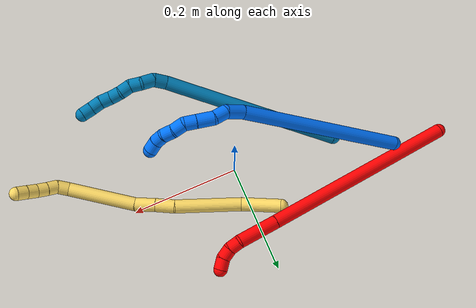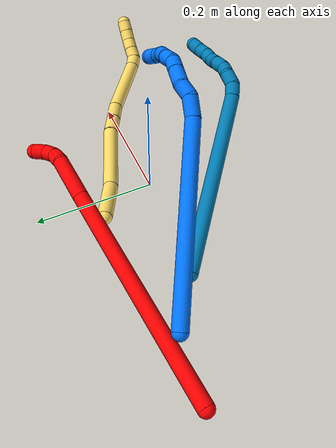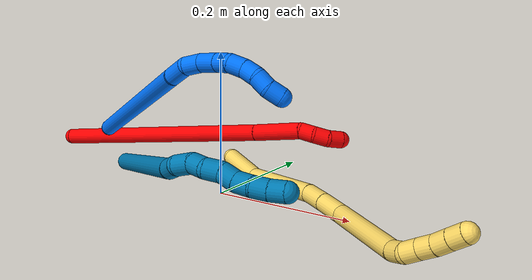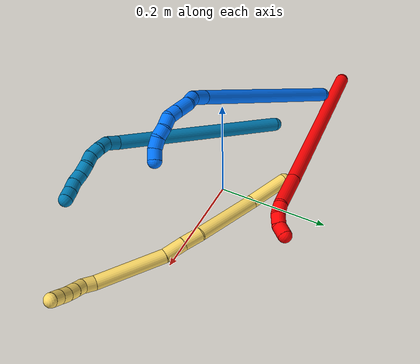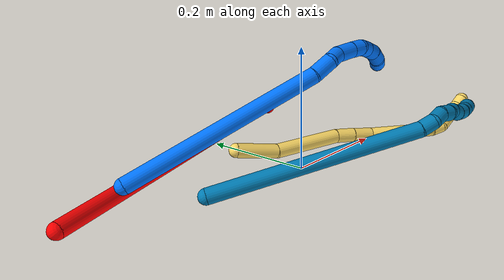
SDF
<sdf version="1.7">
 <world name="default">
  <model name="2">
   <static>0</static>
   <link name="2">
    <collision name="collision-cylinder-e_1_1_4">
     <pose>0.142845 0.104999 0.035398 -1.24563 0.911049 -0.676593</pose>
     <geometry><cylinder><radius>0.0125</radius><length>0.361566</length></cylinder></geometry>
     <surface>
      <friction><ode><mu>1.16</mu><mu2>1.16</mu2><slip1>0</slip1><slip2>0</slip2></ode></friction>
      <contact><ode><kp>1e+06</kp><kd>1</kd><max_vel>0</max_vel><min_depth>0.001</min_depth></ode></contact>
     </surface>
    </collision>
    <visual name="visual-cylinder-e_1_1_4">
     <pose>0.142845 0.104999 0.035398 -1.24563 0.911049 -0.676593</pose>
     <geometry><cylinder><radius>0.0125</radius><length>0.361566</length></cylinder></geometry>
     <material><ambient>1 0 0 1</ambient></material>
    </visual>
    <collision name="collision-cylinder-e_2_4_5">
     <pose>0.315069 0.232232 0.078776 -1.22625 0.893564 -0.650235</pose>
     <geometry><cylinder><radius>0.0125</radius><length>0.075396</length></cylinder></geometry>
     <surface>
      <friction><ode><mu>1.16</mu><mu2>1.16</mu2><slip1>0</slip1><slip2>0</slip2></ode></friction>
      <contact><ode><kp>1e+06</kp><kd>1</kd><max_vel>0</max_vel><min_depth>0.001</min_depth></ode></contact>
     </surface>
    </collision>
    <visual name="visual-cylinder-e_2_4_5">
     <pose>0.315069 0.232232 0.078776 -1.22625 0.893564 -0.650235</pose>
     <geometry><cylinder><radius>0.0125</radius><length>0.075396</length></cylinder></geometry>
     <material><ambient>1 0 0 1</ambient></material>
    </visual>
    <collision name="collision-cylinder-e_3_5_6">
     <pose>0.353996 0.258674 0.08609 -1.72761 1.15119 -1.29916</pose>
     <geometry><cylinder><radius>0.0125</radius><length>0.020911</length></cylinder></geometry>
     <surface>
      <friction><ode><mu>1.16</mu><mu2>1.16</mu2><slip1>0</slip1><slip2>0</slip2></ode></friction>
      <contact><ode><kp>1e+06</kp><kd>1</kd><max_vel>0</max_vel><min_depth>0.001</min_depth></ode></contact>
     </surface>
    </collision>
    <visual name="visual-cylinder-e_3_5_6">
     <pose>0.353996 0.258674 0.08609 -1.72761 1.15119 -1.29916</pose>
     <geometry><cylinder><radius>0.0125</radius><length>0.020911</length></cylinder></geometry>
     <material><ambient>1 0 0 1</ambient></material>
    </visual>
    <collision name="collision-cylinder-e_4_6_7">
     <pose>0.372007 0.267823 0.081755 -2.20955 0.9419 -1.58303</pose>
     <geometry><cylinder><radius>0.0125</radius><length>0.020928</length></cylinder></geometry>
     <surface>
      <friction><ode><mu>1.16</mu><mu2>1.16</mu2><slip1>0</slip1><slip2>0</slip2></ode></friction>
      <contact><ode><kp>1e+06</kp><kd>1</kd><max_vel>0</max_vel><min_depth>0.001</min_depth></ode></contact>
     </surface>
    </collision>
    <visual name="visual-cylinder-e_4_6_7">
     <pose>0.372007 0.267823 0.081755 -2.20955 0.9419 -1.58303</pose>
     <geometry><cylinder><radius>0.0125</radius><length>0.020928</length></cylinder></geometry>
     <material><ambient>1 0 0 1</ambient></material>
    </visual>
    <collision name="collision-cylinder-e_5_7_2">
     <pose>0.386103 0.27935 0.071982 -2.31824 0.560413 -1.16548</pose>
     <geometry><cylinder><radius>0.0125</radius><length>0.021198</length></cylinder></geometry>
     <surface>
      <friction><ode><mu>1.16</mu><mu2>1.16</mu2><slip1>0</slip1><slip2>0</slip2></ode></friction>
      <contact><ode><kp>1e+06</kp><kd>1</kd><max_vel>0</max_vel><min_depth>0.001</min_depth></ode></contact>
     </surface>
    </collision>
    <visual name="visual-cylinder-e_5_7_2">
     <pose>0.386103 0.27935 0.071982 -2.31824 0.560413 -1.16548</pose>
     <geometry><cylinder><radius>0.0125</radius><length>0.021198</length></cylinder></geometry>
     <material><ambient>1 0 0 1</ambient></material>
    </visual>
    <collision name="collision-sphere-2">
     <pose>0.391736 0.285934 0.065879 0 -0 0</pose>
     <geometry><sphere><radius>0.0125</radius></sphere></geometry>
     <surface>
      <friction><ode><mu>1.16</mu><mu2>1.16</mu2><slip1>0</slip1><slip2>0</slip2></ode></friction>
      <contact><ode><kp>1e+06</kp><kd>1</kd><max_vel>0</max_vel><min_depth>0.001</min_depth></ode></contact>
     </surface>
    </collision>
    <visual name="visual-sphere-2">
     <pose>0.391736 0.285934 0.065879 0 -0 0</pose>
     <geometry><sphere><radius>0.0125</radius></sphere></geometry>
     <material><ambient>1 0 0 1</ambient></material>
    </visual>
    <collision name="collision-sphere-7">
     <pose>0.380469 0.272765 0.078085 0 -0 0</pose>
     <geometry><sphere><radius>0.0125</radius></sphere></geometry>
     <surface>
      <friction><ode><mu>1.16</mu><mu2>1.16</mu2><slip1>0</slip1><slip2>0</slip2></ode></friction>
      <contact><ode><kp>1e+06</kp><kd>1</kd><max_vel>0</max_vel><min_depth>0.001</min_depth></ode></contact>
     </surface>
    </collision>
    <visual name="visual-sphere-7">
     <pose>0.380469 0.272765 0.078085 0 -0 0</pose>
     <geometry><sphere><radius>0.0125</radius></sphere></geometry>
     <material><ambient>1 0 0 1</ambient></material>
    </visual>
    <collision name="collision-sphere-6">
     <pose>0.363544 0.262881 0.085425 0 -0 0</pose>
     <geometry><sphere><radius>0.0125</radius></sphere></geometry>
     <surface>
      <friction><ode><mu>1.16</mu><mu2>1.16</mu2><slip1>0</slip1><slip2>0</slip2></ode></friction>
      <contact><ode><kp>1e+06</kp><kd>1</kd><max_vel>0</max_vel><min_depth>0.001</min_depth></ode></contact>
     </surface>
    </collision>
    <visual name="visual-sphere-6">
     <pose>0.363544 0.262881 0.085425 0 -0 0</pose>
     <geometry><sphere><radius>0.0125</radius></sphere></geometry>
     <material><ambient>1 0 0 1</ambient></material>
    </visual>
    <collision name="collision-sphere-5">
     <pose>0.344447 0.254466 0.086755 0 -0 0</pose>
     <geometry><sphere><radius>0.0125</radius></sphere></geometry>
     <surface>
      <friction><ode><mu>1.16</mu><mu2>1.16</mu2><slip1>0</slip1><slip2>0</slip2></ode></friction>
      <contact><ode><kp>1e+06</kp><kd>1</kd><max_vel>0</max_vel><min_depth>0.001</min_depth></ode></contact>
     </surface>
    </collision>
    <visual name="visual-sphere-5">
     <pose>0.344447 0.254466 0.086755 0 -0 0</pose>
     <geometry><sphere><radius>0.0125</radius></sphere></geometry>
     <material><ambient>1 0 0 1</ambient></material>
    </visual>
    <collision name="collision-sphere-1">
     <geometry><sphere><radius>0.0125</radius></sphere></geometry>
     <surface>
      <friction><ode><mu>1.16</mu><mu2>1.16</mu2><slip1>0</slip1><slip2>0</slip2></ode></friction>
      <contact><ode><kp>1e+06</kp><kd>1</kd><max_vel>0</max_vel><min_depth>0.001</min_depth></ode></contact>
     </surface>
    </collision>
    <visual name="visual-sphere-1">
     <geometry><sphere><radius>0.0125</radius></sphere></geometry>
     <material><ambient>1 0 0 1</ambient></material>
    </visual>
    <collision name="collision-sphere-4">
     <pose>0.28569 0.209997 0.070797 0 -0 0</pose>
     <geometry><sphere><radius>0.0125</radius></sphere></geometry>
     <surface>
      <friction><ode><mu>1.16</mu><mu2>1.16</mu2><slip1>0</slip1><slip2>0</slip2></ode></friction>
      <contact><ode><kp>1e+06</kp><kd>1</kd><max_vel>0</max_vel><min_depth>0.001</min_depth></ode></contact>
     </surface>
    </collision>
    <visual name="visual-sphere-4">
     <pose>0.28569 0.209997 0.070797 0 -0 0</pose>
     <geometry><sphere><radius>0.0125</radius></sphere></geometry>
     <material><ambient>1 0 0 1</ambient></material>
    </visual>
    <inertial>
     <pose>0.197551 0.144819 0.047551 0 -0 0</pose>
     <mass>0.5</mass>
     <inertia>
      <ixx>0.000405</ixx>
      <ixy>0</ixy>
      <ixz>0</ixz>
      <iyy>0.001356</iyy>
      <iyz>0</iyz>
      <izz>-0.005473</izz>
     </inertia>
    </inertial>
   </link>
   <pose>-0.3805 0.085864 0.011494 0.872684 0.487801 -0.111903</pose>
  </model>
  <model name="5">
   <static>0</static>
   <link name="5">
    <collision name="collision-cylinder-e_1_1_4">
     <pose>0.021154 0.000969 0.030359 -0.031908 0.608337 -0.010017</pose>
     <geometry><cylinder><radius>0.0125</radius><length>0.074031</length></cylinder></geometry>
     <surface>
      <friction><ode><mu>1.16</mu><mu2>1.16</mu2><slip1>0</slip1><slip2>0</slip2></ode></friction>
      <contact><ode><kp>1e+06</kp><kd>1</kd><max_vel>0</max_vel><min_depth>0.001</min_depth></ode></contact>
     </surface>
    </collision>
    <visual name="visual-cylinder-e_1_1_4">
     <pose>0.021154 0.000969 0.030359 -0.031908 0.608337 -0.010017</pose>
     <geometry><cylinder><radius>0.0125</radius><length>0.074031</length></cylinder></geometry>
     <material><ambient>1 0.858824 0.4 1</ambient></material>
    </visual>
    <collision name="collision-cylinder-e_2_4_5">
     <pose>0.06402 0.004048 0.118164 -0.036712 0.361122 -0.006702</pose>
     <geometry><cylinder><radius>0.0125</radius><length>0.122895</length></cylinder></geometry>
     <surface>
      <friction><ode><mu>1.16</mu><mu2>1.16</mu2><slip1>0</slip1><slip2>0</slip2></ode></friction>
      <contact><ode><kp>1e+06</kp><kd>1</kd><max_vel>0</max_vel><min_depth>0.001</min_depth></ode></contact>
     </surface>
    </collision>
    <visual name="visual-cylinder-e_2_4_5">
     <pose>0.06402 0.004048 0.118164 -0.036712 0.361122 -0.006702</pose>
     <geometry><cylinder><radius>0.0125</radius><length>0.122895</length></cylinder></geometry>
     <material><ambient>1 0.858824 0.4 1</ambient></material>
    </visual>
    <collision name="collision-cylinder-e_3_5_6">
     <pose>0.094688 0.005624 0.190845 0.035008 0.531205 0.009524</pose>
     <geometry><cylinder><radius>0.0125</radius><length>0.035364</length></cylinder></geometry>
     <surface>
      <friction><ode><mu>1.16</mu><mu2>1.16</mu2><slip1>0</slip1><slip2>0</slip2></ode></friction>
      <contact><ode><kp>1e+06</kp><kd>1</kd><max_vel>0</max_vel><min_depth>0.001</min_depth></ode></contact>
     </surface>
    </collision>
    <visual name="visual-cylinder-e_3_5_6">
     <pose>0.094688 0.005624 0.190845 0.035008 0.531205 0.009524</pose>
     <geometry><cylinder><radius>0.0125</radius><length>0.035364</length></cylinder></geometry>
     <material><ambient>1 0.858824 0.4 1</ambient></material>
    </visual>
    <collision name="collision-cylinder-e_4_6_7">
     <pose>0.113898 0.005466 0.222348 -0.023069 0.562278 -0.006662</pose>
     <geometry><cylinder><radius>0.0125</radius><length>0.038464</length></cylinder></geometry>
     <surface>
      <friction><ode><mu>1.16</mu><mu2>1.16</mu2><slip1>0</slip1><slip2>0</slip2></ode></friction>
      <contact><ode><kp>1e+06</kp><kd>1</kd><max_vel>0</max_vel><min_depth>0.001</min_depth></ode></contact>
     </surface>
    </collision>
    <visual name="visual-cylinder-e_4_6_7">
     <pose>0.113898 0.005466 0.222348 -0.023069 0.562278 -0.006662</pose>
     <geometry><cylinder><radius>0.0125</radius><length>0.038464</length></cylinder></geometry>
     <material><ambient>1 0.858824 0.4 1</ambient></material>
    </visual>
    <collision name="collision-cylinder-e_5_7_8">
     <pose>0.156095 -0.005595 0.292158 0.210431 0.528155 0.057094</pose>
     <geometry><cylinder><radius>0.0125</radius><length>0.126777</length></cylinder></geometry>
     <surface>
      <friction><ode><mu>1.16</mu><mu2>1.16</mu2><slip1>0</slip1><slip2>0</slip2></ode></friction>
      <contact><ode><kp>1e+06</kp><kd>1</kd><max_vel>0</max_vel><min_depth>0.001</min_depth></ode></contact>
     </surface>
    </collision>
    <visual name="visual-cylinder-e_5_7_8">
     <pose>0.156095 -0.005595 0.292158 0.210431 0.528155 0.057094</pose>
     <geometry><cylinder><radius>0.0125</radius><length>0.126777</length></cylinder></geometry>
     <material><ambient>1 0.858824 0.4 1</ambient></material>
    </visual>
    <collision name="collision-cylinder-e_6_8_9">
     <pose>0.19093 -0.0196 0.35614 0.241231 0.262775 0.032031</pose>
     <geometry><cylinder><radius>0.0125</radius><length>0.022265</length></cylinder></geometry>
     <surface>
      <friction><ode><mu>1.16</mu><mu2>1.16</mu2><slip1>0</slip1><slip2>0</slip2></ode></friction>
      <contact><ode><kp>1e+06</kp><kd>1</kd><max_vel>0</max_vel><min_depth>0.001</min_depth></ode></contact>
     </surface>
    </collision>
    <visual name="visual-cylinder-e_6_8_9">
     <pose>0.19093 -0.0196 0.35614 0.241231 0.262775 0.032031</pose>
     <geometry><cylinder><radius>0.0125</radius><length>0.022265</length></cylinder></geometry>
     <material><ambient>1 0.858824 0.4 1</ambient></material>
    </visual>
    <collision name="collision-cylinder-e_7_9_10">
     <pose>0.192396 -0.021358 0.376547 -0.081142 -0.141667 0.00576</pose>
     <geometry><cylinder><radius>0.0125</radius><length>0.020203</length></cylinder></geometry>
     <surface>
      <friction><ode><mu>1.16</mu><mu2>1.16</mu2><slip1>0</slip1><slip2>0</slip2></ode></friction>
      <contact><ode><kp>1e+06</kp><kd>1</kd><max_vel>0</max_vel><min_depth>0.001</min_depth></ode></contact>
     </surface>
    </collision>
    <visual name="visual-cylinder-e_7_9_10">
     <pose>0.192396 -0.021358 0.376547 -0.081142 -0.141667 0.00576</pose>
     <geometry><cylinder><radius>0.0125</radius><length>0.020203</length></cylinder></geometry>
     <material><ambient>1 0.858824 0.4 1</ambient></material>
    </visual>
    <collision name="collision-cylinder-e_8_10_11">
     <pose>0.189834 -0.020005 0.396435 -0.054563 -0.113804 0.003109</pose>
     <geometry><cylinder><radius>0.0125</radius><length>0.020001</length></cylinder></geometry>
     <surface>
      <friction><ode><mu>1.16</mu><mu2>1.16</mu2><slip1>0</slip1><slip2>0</slip2></ode></friction>
      <contact><ode><kp>1e+06</kp><kd>1</kd><max_vel>0</max_vel><min_depth>0.001</min_depth></ode></contact>
     </surface>
    </collision>
    <visual name="visual-cylinder-e_8_10_11">
     <pose>0.189834 -0.020005 0.396435 -0.054563 -0.113804 0.003109</pose>
     <geometry><cylinder><radius>0.0125</radius><length>0.020001</length></cylinder></geometry>
     <material><ambient>1 0.858824 0.4 1</ambient></material>
    </visual>
    <collision name="collision-cylinder-e_9_11_12">
     <pose>0.186702 -0.019669 0.416153 0.020998 -0.201005 -0.002118</pose>
     <geometry><cylinder><radius>0.0125</radius><length>0.02</length></cylinder></geometry>
     <surface>
      <friction><ode><mu>1.16</mu><mu2>1.16</mu2><slip1>0</slip1><slip2>0</slip2></ode></friction>
      <contact><ode><kp>1e+06</kp><kd>1</kd><max_vel>0</max_vel><min_depth>0.001</min_depth></ode></contact>
     </surface>
    </collision>
    <visual name="visual-cylinder-e_9_11_12">
     <pose>0.186702 -0.019669 0.416153 0.020998 -0.201005 -0.002118</pose>
     <geometry><cylinder><radius>0.0125</radius><length>0.02</length></cylinder></geometry>
     <material><ambient>1 0.858824 0.4 1</ambient></material>
    </visual>
    <collision name="collision-cylinder-e_10_12_2">
     <pose>0.182738 -0.019921 0.435754 0.004745 -0.198017 -0.000471</pose>
     <geometry><cylinder><radius>0.0125</radius><length>0.02</length></cylinder></geometry>
     <surface>
      <friction><ode><mu>1.16</mu><mu2>1.16</mu2><slip1>0</slip1><slip2>0</slip2></ode></friction>
      <contact><ode><kp>1e+06</kp><kd>1</kd><max_vel>0</max_vel><min_depth>0.001</min_depth></ode></contact>
     </surface>
    </collision>
    <visual name="visual-cylinder-e_10_12_2">
     <pose>0.182738 -0.019921 0.435754 0.004745 -0.198017 -0.000471</pose>
     <geometry><cylinder><radius>0.0125</radius><length>0.02</length></cylinder></geometry>
     <material><ambient>1 0.858824 0.4 1</ambient></material>
    </visual>
    <collision name="collision-sphere-2">
     <pose>0.180771 -0.019968 0.445559 0 -0 0</pose>
     <geometry><sphere><radius>0.0125</radius></sphere></geometry>
     <surface>
      <friction><ode><mu>1.16</mu><mu2>1.16</mu2><slip1>0</slip1><slip2>0</slip2></ode></friction>
      <contact><ode><kp>1e+06</kp><kd>1</kd><max_vel>0</max_vel><min_depth>0.001</min_depth></ode></contact>
     </surface>
    </collision>
    <visual name="visual-sphere-2">
     <pose>0.180771 -0.019968 0.445559 0 -0 0</pose>
     <geometry><sphere><radius>0.0125</radius></sphere></geometry>
     <material><ambient>1 0.858824 0.4 1</ambient></material>
    </visual>
    <collision name="collision-sphere-12">
     <pose>0.184705 -0.019875 0.42595 0 -0 0</pose>
     <geometry><sphere><radius>0.0125</radius></sphere></geometry>
     <surface>
      <friction><ode><mu>1.16</mu><mu2>1.16</mu2><slip1>0</slip1><slip2>0</slip2></ode></friction>
      <contact><ode><kp>1e+06</kp><kd>1</kd><max_vel>0</max_vel><min_depth>0.001</min_depth></ode></contact>
     </surface>
    </collision>
    <visual name="visual-sphere-12">
     <pose>0.184705 -0.019875 0.42595 0 -0 0</pose>
     <geometry><sphere><radius>0.0125</radius></sphere></geometry>
     <material><ambient>1 0.858824 0.4 1</ambient></material>
    </visual>
    <collision name="collision-sphere-11">
     <pose>0.188698 -0.019463 0.406356 0 -0 0</pose>
     <geometry><sphere><radius>0.0125</radius></sphere></geometry>
     <surface>
      <friction><ode><mu>1.16</mu><mu2>1.16</mu2><slip1>0</slip1><slip2>0</slip2></ode></friction>
      <contact><ode><kp>1e+06</kp><kd>1</kd><max_vel>0</max_vel><min_depth>0.001</min_depth></ode></contact>
     </surface>
    </collision>
    <visual name="visual-sphere-11">
     <pose>0.188698 -0.019463 0.406356 0 -0 0</pose>
     <geometry><sphere><radius>0.0125</radius></sphere></geometry>
     <material><ambient>1 0.858824 0.4 1</ambient></material>
    </visual>
    <collision name="collision-sphere-10">
     <pose>0.19097 -0.020547 0.386514 0 -0 0</pose>
     <geometry><sphere><radius>0.0125</radius></sphere></geometry>
     <surface>
      <friction><ode><mu>1.16</mu><mu2>1.16</mu2><slip1>0</slip1><slip2>0</slip2></ode></friction>
      <contact><ode><kp>1e+06</kp><kd>1</kd><max_vel>0</max_vel><min_depth>0.001</min_depth></ode></contact>
     </surface>
    </collision>
    <visual name="visual-sphere-10">
     <pose>0.19097 -0.020547 0.386514 0 -0 0</pose>
     <geometry><sphere><radius>0.0125</radius></sphere></geometry>
     <material><ambient>1 0.858824 0.4 1</ambient></material>
    </visual>
    <collision name="collision-sphere-9">
     <pose>0.193822 -0.022168 0.366579 0 -0 0</pose>
     <geometry><sphere><radius>0.0125</radius></sphere></geometry>
     <surface>
      <friction><ode><mu>1.16</mu><mu2>1.16</mu2><slip1>0</slip1><slip2>0</slip2></ode></friction>
      <contact><ode><kp>1e+06</kp><kd>1</kd><max_vel>0</max_vel><min_depth>0.001</min_depth></ode></contact>
     </surface>
    </collision>
    <visual name="visual-sphere-9">
     <pose>0.193822 -0.022168 0.366579 0 -0 0</pose>
     <geometry><sphere><radius>0.0125</radius></sphere></geometry>
     <material><ambient>1 0.858824 0.4 1</ambient></material>
    </visual>
    <collision name="collision-sphere-4">
     <pose>0.042309 0.001938 0.060719 0 -0 0</pose>
     <geometry><sphere><radius>0.0125</radius></sphere></geometry>
     <surface>
      <friction><ode><mu>1.16</mu><mu2>1.16</mu2><slip1>0</slip1><slip2>0</slip2></ode></friction>
      <contact><ode><kp>1e+06</kp><kd>1</kd><max_vel>0</max_vel><min_depth>0.001</min_depth></ode></contact>
     </surface>
    </collision>
    <visual name="visual-sphere-4">
     <pose>0.042309 0.001938 0.060719 0 -0 0</pose>
     <geometry><sphere><radius>0.0125</radius></sphere></geometry>
     <material><ambient>1 0.858824 0.4 1</ambient></material>
    </visual>
    <collision name="collision-sphere-1">
     <geometry><sphere><radius>0.0125</radius></sphere></geometry>
     <surface>
      <friction><ode><mu>1.16</mu><mu2>1.16</mu2><slip1>0</slip1><slip2>0</slip2></ode></friction>
      <contact><ode><kp>1e+06</kp><kd>1</kd><max_vel>0</max_vel><min_depth>0.001</min_depth></ode></contact>
     </surface>
    </collision>
    <visual name="visual-sphere-1">
     <geometry><sphere><radius>0.0125</radius></sphere></geometry>
     <material><ambient>1 0.858824 0.4 1</ambient></material>
    </visual>
    <collision name="collision-sphere-8">
     <pose>0.188039 -0.017032 0.345701 0 -0 0</pose>
     <geometry><sphere><radius>0.0125</radius></sphere></geometry>
     <surface>
      <friction><ode><mu>1.16</mu><mu2>1.16</mu2><slip1>0</slip1><slip2>0</slip2></ode></friction>
      <contact><ode><kp>1e+06</kp><kd>1</kd><max_vel>0</max_vel><min_depth>0.001</min_depth></ode></contact>
     </surface>
    </collision>
    <visual name="visual-sphere-8">
     <pose>0.188039 -0.017032 0.345701 0 -0 0</pose>
     <geometry><sphere><radius>0.0125</radius></sphere></geometry>
     <material><ambient>1 0.858824 0.4 1</ambient></material>
    </visual>
    <collision name="collision-sphere-5">
     <pose>0.085731 0.006158 0.175609 0 -0 0</pose>
     <geometry><sphere><radius>0.0125</radius></sphere></geometry>
     <surface>
      <friction><ode><mu>1.16</mu><mu2>1.16</mu2><slip1>0</slip1><slip2>0</slip2></ode></friction>
      <contact><ode><kp>1e+06</kp><kd>1</kd><max_vel>0</max_vel><min_depth>0.001</min_depth></ode></contact>
     </surface>
    </collision>
    <visual name="visual-sphere-5">
     <pose>0.085731 0.006158 0.175609 0 -0 0</pose>
     <geometry><sphere><radius>0.0125</radius></sphere></geometry>
     <material><ambient>1 0.858824 0.4 1</ambient></material>
    </visual>
    <collision name="collision-sphere-6">
     <pose>0.103645 0.005091 0.206081 0 -0 0</pose>
     <geometry><sphere><radius>0.0125</radius></sphere></geometry>
     <surface>
      <friction><ode><mu>1.16</mu><mu2>1.16</mu2><slip1>0</slip1><slip2>0</slip2></ode></friction>
      <contact><ode><kp>1e+06</kp><kd>1</kd><max_vel>0</max_vel><min_depth>0.001</min_depth></ode></contact>
     </surface>
    </collision>
    <visual name="visual-sphere-6">
     <pose>0.103645 0.005091 0.206081 0 -0 0</pose>
     <geometry><sphere><radius>0.0125</radius></sphere></geometry>
     <material><ambient>1 0.858824 0.4 1</ambient></material>
    </visual>
    <collision name="collision-sphere-7">
     <pose>0.124151 0.005841 0.238615 0 -0 0</pose>
     <geometry><sphere><radius>0.0125</radius></sphere></geometry>
     <surface>
      <friction><ode><mu>1.16</mu><mu2>1.16</mu2><slip1>0</slip1><slip2>0</slip2></ode></friction>
      <contact><ode><kp>1e+06</kp><kd>1</kd><max_vel>0</max_vel><min_depth>0.001</min_depth></ode></contact>
     </surface>
    </collision>
    <visual name="visual-sphere-7">
     <pose>0.124151 0.005841 0.238615 0 -0 0</pose>
     <geometry><sphere><radius>0.0125</radius></sphere></geometry>
     <material><ambient>1 0.858824 0.4 1</ambient></material>
    </visual>
    <inertial>
     <pose>0.112553 -0.003582 0.219228 0 -0 0</pose>
     <mass>0.5</mass>
     <inertia>
      <ixx>0.000369</ixx>
      <ixy>0</ixy>
      <ixz>0</ixz>
      <iyy>0.000392</iyy>
      <iyz>0</iyz>
      <izz>-0.000111</izz>
     </inertia>
    </inertial>
   </link>
   <pose>-0.049904 0.099592 0.023044 -0.848221 0.944113 -1.17793</pose>
  </model>
  <model name="9">
   <static>0</static>
   <link name="9">
    <collision name="collision-cylinder-e_1_1_4">
     <pose>0.113981 -0.069468 0.096795 0.622491 0.763258 0.256779</pose>
     <geometry><cylinder><radius>0.0125</radius><length>0.329768</length></cylinder></geometry>
     <surface>
      <friction><ode><mu>1.16</mu><mu2>1.16</mu2><slip1>0</slip1><slip2>0</slip2></ode></friction>
      <contact><ode><kp>1e+06</kp><kd>1</kd><max_vel>0</max_vel><min_depth>0.001</min_depth></ode></contact>
     </surface>
    </collision>
    <visual name="visual-cylinder-e_1_1_4">
     <pose>0.113981 -0.069468 0.096795 0.622491 0.763258 0.256779</pose>
     <geometry><cylinder><radius>0.0125</radius><length>0.329768</length></cylinder></geometry>
     <material><ambient>0 0.490196 0.709804 1</ambient></material>
    </visual>
    <collision name="collision-cylinder-e_2_4_5">
     <pose>0.237687 -0.141552 0.200281 0.372869 0.934545 0.189766</pose>
     <geometry><cylinder><radius>0.0125</radius><length>0.024181</length></cylinder></geometry>
     <surface>
      <friction><ode><mu>1.16</mu><mu2>1.16</mu2><slip1>0</slip1><slip2>0</slip2></ode></friction>
      <contact><ode><kp>1e+06</kp><kd>1</kd><max_vel>0</max_vel><min_depth>0.001</min_depth></ode></contact>
     </surface>
    </collision>
    <visual name="visual-cylinder-e_2_4_5">
     <pose>0.237687 -0.141552 0.200281 0.372869 0.934545 0.189766</pose>
     <geometry><cylinder><radius>0.0125</radius><length>0.024181</length></cylinder></geometry>
     <material><ambient>0 0.490196 0.709804 1</ambient></material>
    </visual>
    <collision name="collision-cylinder-e_3_5_6">
     <pose>0.25929 -0.145544 0.208539 0.71961 1.39703 0.611955</pose>
     <geometry><cylinder><radius>0.0125</radius><length>0.02412</length></cylinder></geometry>
     <surface>
      <friction><ode><mu>1.16</mu><mu2>1.16</mu2><slip1>0</slip1><slip2>0</slip2></ode></friction>
      <contact><ode><kp>1e+06</kp><kd>1</kd><max_vel>0</max_vel><min_depth>0.001</min_depth></ode></contact>
     </surface>
    </collision>
    <visual name="visual-cylinder-e_3_5_6">
     <pose>0.25929 -0.145544 0.208539 0.71961 1.39703 0.611955</pose>
     <geometry><cylinder><radius>0.0125</radius><length>0.02412</length></cylinder></geometry>
     <material><ambient>0 0.490196 0.709804 1</ambient></material>
    </visual>
    <collision name="collision-cylinder-e_4_6_7">
     <pose>0.279998 -0.151936 0.210644 1.46429 1.05154 0.961429</pose>
     <geometry><cylinder><radius>0.0125</radius><length>0.020341</length></cylinder></geometry>
     <surface>
      <friction><ode><mu>1.16</mu><mu2>1.16</mu2><slip1>0</slip1><slip2>0</slip2></ode></friction>
      <contact><ode><kp>1e+06</kp><kd>1</kd><max_vel>0</max_vel><min_depth>0.001</min_depth></ode></contact>
     </surface>
    </collision>
    <visual name="visual-cylinder-e_4_6_7">
     <pose>0.279998 -0.151936 0.210644 1.46429 1.05154 0.961429</pose>
     <geometry><cylinder><radius>0.0125</radius><length>0.020341</length></cylinder></geometry>
     <material><ambient>0 0.490196 0.709804 1</ambient></material>
    </visual>
    <collision name="collision-cylinder-e_5_7_8">
     <pose>0.298469 -0.15981 0.20847 2.33028 1.1831 2.00398</pose>
     <geometry><cylinder><radius>0.0125</radius><length>0.020828</length></cylinder></geometry>
     <surface>
      <friction><ode><mu>1.16</mu><mu2>1.16</mu2><slip1>0</slip1><slip2>0</slip2></ode></friction>
      <contact><ode><kp>1e+06</kp><kd>1</kd><max_vel>0</max_vel><min_depth>0.001</min_depth></ode></contact>
     </surface>
    </collision>
    <visual name="visual-cylinder-e_5_7_8">
     <pose>0.298469 -0.15981 0.20847 2.33028 1.1831 2.00398</pose>
     <geometry><cylinder><radius>0.0125</radius><length>0.020828</length></cylinder></geometry>
     <material><ambient>0 0.490196 0.709804 1</ambient></material>
    </visual>
    <collision name="collision-cylinder-e_6_8_9">
     <pose>0.316053 -0.168621 0.203335 1.95728 0.890185 1.23365</pose>
     <geometry><cylinder><radius>0.0125</radius><length>0.020439</length></cylinder></geometry>
     <surface>
      <friction><ode><mu>1.16</mu><mu2>1.16</mu2><slip1>0</slip1><slip2>0</slip2></ode></friction>
      <contact><ode><kp>1e+06</kp><kd>1</kd><max_vel>0</max_vel><min_depth>0.001</min_depth></ode></contact>
     </surface>
    </collision>
    <visual name="visual-cylinder-e_6_8_9">
     <pose>0.316053 -0.168621 0.203335 1.95728 0.890185 1.23365</pose>
     <geometry><cylinder><radius>0.0125</radius><length>0.020439</length></cylinder></geometry>
     <material><ambient>0 0.490196 0.709804 1</ambient></material>
    </visual>
    <collision name="collision-cylinder-e_7_9_10">
     <pose>0.333285 -0.17845 0.199909 1.82395 1.16426 1.40919</pose>
     <geometry><cylinder><radius>0.0125</radius><length>0.020227</length></cylinder></geometry>
     <surface>
      <friction><ode><mu>1.16</mu><mu2>1.16</mu2><slip1>0</slip1><slip2>0</slip2></ode></friction>
      <contact><ode><kp>1e+06</kp><kd>1</kd><max_vel>0</max_vel><min_depth>0.001</min_depth></ode></contact>
     </surface>
    </collision>
    <visual name="visual-cylinder-e_7_9_10">
     <pose>0.333285 -0.17845 0.199909 1.82395 1.16426 1.40919</pose>
     <geometry><cylinder><radius>0.0125</radius><length>0.020227</length></cylinder></geometry>
     <material><ambient>0 0.490196 0.709804 1</ambient></material>
    </visual>
    <collision name="collision-cylinder-e_8_10_11">
     <pose>0.351861 -0.184963 0.196241 2.36081 1.18668 2.04585</pose>
     <geometry><cylinder><radius>0.0125</radius><length>0.020034</length></cylinder></geometry>
     <surface>
      <friction><ode><mu>1.16</mu><mu2>1.16</mu2><slip1>0</slip1><slip2>0</slip2></ode></friction>
      <contact><ode><kp>1e+06</kp><kd>1</kd><max_vel>0</max_vel><min_depth>0.001</min_depth></ode></contact>
     </surface>
    </collision>
    <visual name="visual-cylinder-e_8_10_11">
     <pose>0.351861 -0.184963 0.196241 2.36081 1.18668 2.04585</pose>
     <geometry><cylinder><radius>0.0125</radius><length>0.020034</length></cylinder></geometry>
     <material><ambient>0 0.490196 0.709804 1</ambient></material>
    </visual>
    <collision name="collision-cylinder-e_9_11_2">
     <pose>0.370803 -0.189442 0.191571 2.39965 1.29642 2.19268</pose>
     <geometry><cylinder><radius>0.0125</radius><length>0.020062</length></cylinder></geometry>
     <surface>
      <friction><ode><mu>1.16</mu><mu2>1.16</mu2><slip1>0</slip1><slip2>0</slip2></ode></friction>
      <contact><ode><kp>1e+06</kp><kd>1</kd><max_vel>0</max_vel><min_depth>0.001</min_depth></ode></contact>
     </surface>
    </collision>
    <visual name="visual-cylinder-e_9_11_2">
     <pose>0.370803 -0.189442 0.191571 2.39965 1.29642 2.19268</pose>
     <geometry><cylinder><radius>0.0125</radius><length>0.020062</length></cylinder></geometry>
     <material><ambient>0 0.490196 0.709804 1</ambient></material>
    </visual>
    <collision name="collision-sphere-2">
     <pose>0.380459 -0.191278 0.189567 0 -0 0</pose>
     <geometry><sphere><radius>0.0125</radius></sphere></geometry>
     <surface>
      <friction><ode><mu>1.16</mu><mu2>1.16</mu2><slip1>0</slip1><slip2>0</slip2></ode></friction>
      <contact><ode><kp>1e+06</kp><kd>1</kd><max_vel>0</max_vel><min_depth>0.001</min_depth></ode></contact>
     </surface>
    </collision>
    <visual name="visual-sphere-2">
     <pose>0.380459 -0.191278 0.189567 0 -0 0</pose>
     <geometry><sphere><radius>0.0125</radius></sphere></geometry>
     <material><ambient>0 0.490196 0.709804 1</ambient></material>
    </visual>
    <collision name="collision-sphere-11">
     <pose>0.361148 -0.187605 0.193574 0 -0 0</pose>
     <geometry><sphere><radius>0.0125</radius></sphere></geometry>
     <surface>
      <friction><ode><mu>1.16</mu><mu2>1.16</mu2><slip1>0</slip1><slip2>0</slip2></ode></friction>
      <contact><ode><kp>1e+06</kp><kd>1</kd><max_vel>0</max_vel><min_depth>0.001</min_depth></ode></contact>
     </surface>
    </collision>
    <visual name="visual-sphere-11">
     <pose>0.361148 -0.187605 0.193574 0 -0 0</pose>
     <geometry><sphere><radius>0.0125</radius></sphere></geometry>
     <material><ambient>0 0.490196 0.709804 1</ambient></material>
    </visual>
    <collision name="collision-sphere-10">
     <pose>0.342574 -0.182322 0.198907 0 -0 0</pose>
     <geometry><sphere><radius>0.0125</radius></sphere></geometry>
     <surface>
      <friction><ode><mu>1.16</mu><mu2>1.16</mu2><slip1>0</slip1><slip2>0</slip2></ode></friction>
      <contact><ode><kp>1e+06</kp><kd>1</kd><max_vel>0</max_vel><min_depth>0.001</min_depth></ode></contact>
     </surface>
    </collision>
    <visual name="visual-sphere-10">
     <pose>0.342574 -0.182322 0.198907 0 -0 0</pose>
     <geometry><sphere><radius>0.0125</radius></sphere></geometry>
     <material><ambient>0 0.490196 0.709804 1</ambient></material>
    </visual>
    <collision name="collision-sphere-9">
     <pose>0.323995 -0.174578 0.200911 0 -0 0</pose>
     <geometry><sphere><radius>0.0125</radius></sphere></geometry>
     <surface>
      <friction><ode><mu>1.16</mu><mu2>1.16</mu2><slip1>0</slip1><slip2>0</slip2></ode></friction>
      <contact><ode><kp>1e+06</kp><kd>1</kd><max_vel>0</max_vel><min_depth>0.001</min_depth></ode></contact>
     </surface>
    </collision>
    <visual name="visual-sphere-9">
     <pose>0.323995 -0.174578 0.200911 0 -0 0</pose>
     <geometry><sphere><radius>0.0125</radius></sphere></geometry>
     <material><ambient>0 0.490196 0.709804 1</ambient></material>
    </visual>
    <collision name="collision-sphere-4">
     <pose>0.227962 -0.138935 0.193591 0 -0 0</pose>
     <geometry><sphere><radius>0.0125</radius></sphere></geometry>
     <surface>
      <friction><ode><mu>1.16</mu><mu2>1.16</mu2><slip1>0</slip1><slip2>0</slip2></ode></friction>
      <contact><ode><kp>1e+06</kp><kd>1</kd><max_vel>0</max_vel><min_depth>0.001</min_depth></ode></contact>
     </surface>
    </collision>
    <visual name="visual-sphere-4">
     <pose>0.227962 -0.138935 0.193591 0 -0 0</pose>
     <geometry><sphere><radius>0.0125</radius></sphere></geometry>
     <material><ambient>0 0.490196 0.709804 1</ambient></material>
    </visual>
    <collision name="collision-sphere-1">
     <geometry><sphere><radius>0.0125</radius></sphere></geometry>
     <surface>
      <friction><ode><mu>1.16</mu><mu2>1.16</mu2><slip1>0</slip1><slip2>0</slip2></ode></friction>
      <contact><ode><kp>1e+06</kp><kd>1</kd><max_vel>0</max_vel><min_depth>0.001</min_depth></ode></contact>
     </surface>
    </collision>
    <visual name="visual-sphere-1">
     <geometry><sphere><radius>0.0125</radius></sphere></geometry>
     <material><ambient>0 0.490196 0.709804 1</ambient></material>
    </visual>
    <collision name="collision-sphere-8">
     <pose>0.30811 -0.162665 0.205759 0 -0 0</pose>
     <geometry><sphere><radius>0.0125</radius></sphere></geometry>
     <surface>
      <friction><ode><mu>1.16</mu><mu2>1.16</mu2><slip1>0</slip1><slip2>0</slip2></ode></friction>
      <contact><ode><kp>1e+06</kp><kd>1</kd><max_vel>0</max_vel><min_depth>0.001</min_depth></ode></contact>
     </surface>
    </collision>
    <visual name="visual-sphere-8">
     <pose>0.30811 -0.162665 0.205759 0 -0 0</pose>
     <geometry><sphere><radius>0.0125</radius></sphere></geometry>
     <material><ambient>0 0.490196 0.709804 1</ambient></material>
    </visual>
    <collision name="collision-sphere-5">
     <pose>0.247411 -0.144169 0.206971 0 -0 0</pose>
     <geometry><sphere><radius>0.0125</radius></sphere></geometry>
     <surface>
      <friction><ode><mu>1.16</mu><mu2>1.16</mu2><slip1>0</slip1><slip2>0</slip2></ode></friction>
      <contact><ode><kp>1e+06</kp><kd>1</kd><max_vel>0</max_vel><min_depth>0.001</min_depth></ode></contact>
     </surface>
    </collision>
    <visual name="visual-sphere-5">
     <pose>0.247411 -0.144169 0.206971 0 -0 0</pose>
     <geometry><sphere><radius>0.0125</radius></sphere></geometry>
     <material><ambient>0 0.490196 0.709804 1</ambient></material>
    </visual>
    <collision name="collision-sphere-6">
     <pose>0.271168 -0.146918 0.210108 0 -0 0</pose>
     <geometry><sphere><radius>0.0125</radius></sphere></geometry>
     <surface>
      <friction><ode><mu>1.16</mu><mu2>1.16</mu2><slip1>0</slip1><slip2>0</slip2></ode></friction>
      <contact><ode><kp>1e+06</kp><kd>1</kd><max_vel>0</max_vel><min_depth>0.001</min_depth></ode></contact>
     </surface>
    </collision>
    <visual name="visual-sphere-6">
     <pose>0.271168 -0.146918 0.210108 0 -0 0</pose>
     <geometry><sphere><radius>0.0125</radius></sphere></geometry>
     <material><ambient>0 0.490196 0.709804 1</ambient></material>
    </visual>
    <collision name="collision-sphere-7">
     <pose>0.288828 -0.156955 0.211181 0 -0 0</pose>
     <geometry><sphere><radius>0.0125</radius></sphere></geometry>
     <surface>
      <friction><ode><mu>1.16</mu><mu2>1.16</mu2><slip1>0</slip1><slip2>0</slip2></ode></friction>
      <contact><ode><kp>1e+06</kp><kd>1</kd><max_vel>0</max_vel><min_depth>0.001</min_depth></ode></contact>
     </surface>
    </collision>
    <visual name="visual-sphere-7">
     <pose>0.288828 -0.156955 0.211181 0 -0 0</pose>
     <geometry><sphere><radius>0.0125</radius></sphere></geometry>
     <material><ambient>0 0.490196 0.709804 1</ambient></material>
    </visual>
    <inertial>
     <pose>0.17838 -0.101645 0.132788 0 -0 0</pose>
     <mass>0.5</mass>
     <inertia>
      <ixx>0.002684</ixx>
      <ixy>0</ixy>
      <ixz>0</ixz>
      <iyy>0.003217</iyy>
      <iyz>0</iyz>
      <izz>-0.000803</izz>
     </inertia>
    </inertial>
   </link>
   <pose>-0.193953 0.017898 0.011491 0.897745 -0.292451 0.161513</pose>
  </model>
  <model name="14">
   <static>0</static>
   <link name="14">
    <collision name="collision-cylinder-e_1_1_4">
     <pose>0.147286 0.006304 -0.045008 -3.00243 1.2715 -2.95327</pose>
     <geometry><cylinder><radius>0.0125</radius><length>0.308276</length></cylinder></geometry>
     <surface>
      <friction><ode><mu>1.16</mu><mu2>1.16</mu2><slip1>0</slip1><slip2>0</slip2></ode></friction>
      <contact><ode><kp>1e+06</kp><kd>1</kd><max_vel>0</max_vel><min_depth>0.001</min_depth></ode></contact>
     </surface>
    </collision>
    <visual name="visual-cylinder-e_1_1_4">
     <pose>0.147286 0.006304 -0.045008 -3.00243 1.2715 -2.95327</pose>
     <geometry><cylinder><radius>0.0125</radius><length>0.308276</length></cylinder></geometry>
     <material><ambient>0 0.462745 1 1</ambient></material>
    </visual>
    <collision name="collision-cylinder-e_2_4_5">
     <pose>0.310127 0.017087 -0.095313 -2.43972 1.15133 -2.1144</pose>
     <geometry><cylinder><radius>0.0125</radius><length>0.034063</length></cylinder></geometry>
     <surface>
      <friction><ode><mu>1.16</mu><mu2>1.16</mu2><slip1>0</slip1><slip2>0</slip2></ode></friction>
      <contact><ode><kp>1e+06</kp><kd>1</kd><max_vel>0</max_vel><min_depth>0.001</min_depth></ode></contact>
     </surface>
    </collision>
    <visual name="visual-cylinder-e_2_4_5">
     <pose>0.310127 0.017087 -0.095313 -2.43972 1.15133 -2.1144</pose>
     <geometry><cylinder><radius>0.0125</radius><length>0.034063</length></cylinder></geometry>
     <material><ambient>0 0.462745 1 1</ambient></material>
    </visual>
    <collision name="collision-cylinder-e_3_5_6">
     <pose>0.333383 0.027099 -0.108412 -2.52467 0.677908 -1.67181</pose>
     <geometry><cylinder><radius>0.0125</radius><length>0.02456</length></cylinder></geometry>
     <surface>
      <friction><ode><mu>1.16</mu><mu2>1.16</mu2><slip1>0</slip1><slip2>0</slip2></ode></friction>
      <contact><ode><kp>1e+06</kp><kd>1</kd><max_vel>0</max_vel><min_depth>0.001</min_depth></ode></contact>
     </surface>
    </collision>
    <visual name="visual-cylinder-e_3_5_6">
     <pose>0.333383 0.027099 -0.108412 -2.52467 0.677908 -1.67181</pose>
     <geometry><cylinder><radius>0.0125</radius><length>0.02456</length></cylinder></geometry>
     <material><ambient>0 0.462745 1 1</ambient></material>
    </visual>
    <collision name="collision-cylinder-e_4_6_7">
     <pose>0.352449 0.034436 -0.126369 -2.96582 0.833788 -2.74879</pose>
     <geometry><cylinder><radius>0.0125</radius><length>0.030695</length></cylinder></geometry>
     <surface>
      <friction><ode><mu>1.16</mu><mu2>1.16</mu2><slip1>0</slip1><slip2>0</slip2></ode></friction>
      <contact><ode><kp>1e+06</kp><kd>1</kd><max_vel>0</max_vel><min_depth>0.001</min_depth></ode></contact>
     </surface>
    </collision>
    <visual name="visual-cylinder-e_4_6_7">
     <pose>0.352449 0.034436 -0.126369 -2.96582 0.833788 -2.74879</pose>
     <geometry><cylinder><radius>0.0125</radius><length>0.030695</length></cylinder></geometry>
     <material><ambient>0 0.462745 1 1</ambient></material>
    </visual>
    <collision name="collision-cylinder-e_5_7_8">
     <pose>0.371351 0.037093 -0.143669 -3.02274 0.808665 -2.86528</pose>
     <geometry><cylinder><radius>0.0125</radius><length>0.020841</length></cylinder></geometry>
     <surface>
      <friction><ode><mu>1.16</mu><mu2>1.16</mu2><slip1>0</slip1><slip2>0</slip2></ode></friction>
      <contact><ode><kp>1e+06</kp><kd>1</kd><max_vel>0</max_vel><min_depth>0.001</min_depth></ode></contact>
     </surface>
    </collision>
    <visual name="visual-cylinder-e_5_7_8">
     <pose>0.371351 0.037093 -0.143669 -3.02274 0.808665 -2.86528</pose>
     <geometry><cylinder><radius>0.0125</radius><length>0.020841</length></cylinder></geometry>
     <material><ambient>0 0.462745 1 1</ambient></material>
    </visual>
    <collision name="collision-cylinder-e_6_8_9">
     <pose>0.382517 0.039487 -0.160845 -2.98922 0.343261 -2.31192</pose>
     <geometry><cylinder><radius>0.0125</radius><length>0.021558</length></cylinder></geometry>
     <surface>
      <friction><ode><mu>1.16</mu><mu2>1.16</mu2><slip1>0</slip1><slip2>0</slip2></ode></friction>
      <contact><ode><kp>1e+06</kp><kd>1</kd><max_vel>0</max_vel><min_depth>0.001</min_depth></ode></contact>
     </surface>
    </collision>
    <visual name="visual-cylinder-e_6_8_9">
     <pose>0.382517 0.039487 -0.160845 -2.98922 0.343261 -2.31192</pose>
     <geometry><cylinder><radius>0.0125</radius><length>0.021558</length></cylinder></geometry>
     <material><ambient>0 0.462745 1 1</ambient></material>
    </visual>
    <collision name="collision-cylinder-e_7_9_10">
     <pose>0.389639 0.04009 -0.180203 3.04143 0.356862 2.59941</pose>
     <geometry><cylinder><radius>0.0125</radius><length>0.020004</length></cylinder></geometry>
     <surface>
      <friction><ode><mu>1.16</mu><mu2>1.16</mu2><slip1>0</slip1><slip2>0</slip2></ode></friction>
      <contact><ode><kp>1e+06</kp><kd>1</kd><max_vel>0</max_vel><min_depth>0.001</min_depth></ode></contact>
     </surface>
    </collision>
    <visual name="visual-cylinder-e_7_9_10">
     <pose>0.389639 0.04009 -0.180203 3.04143 0.356862 2.59941</pose>
     <geometry><cylinder><radius>0.0125</radius><length>0.020004</length></cylinder></geometry>
     <material><ambient>0 0.462745 1 1</ambient></material>
    </visual>
    <collision name="collision-cylinder-e_8_10_11">
     <pose>0.393315 0.037585 -0.199403 2.98416 0.018217 0.229941</pose>
     <geometry><cylinder><radius>0.0125</radius><length>0.02</length></cylinder></geometry>
     <surface>
      <friction><ode><mu>1.16</mu><mu2>1.16</mu2><slip1>0</slip1><slip2>0</slip2></ode></friction>
      <contact><ode><kp>1e+06</kp><kd>1</kd><max_vel>0</max_vel><min_depth>0.001</min_depth></ode></contact>
     </surface>
    </collision>
    <visual name="visual-cylinder-e_8_10_11">
     <pose>0.393315 0.037585 -0.199403 2.98416 0.018217 0.229941</pose>
     <geometry><cylinder><radius>0.0125</radius><length>0.02</length></cylinder></geometry>
     <material><ambient>0 0.462745 1 1</ambient></material>
    </visual>
    <collision name="collision-cylinder-e_9_11_2">
     <pose>0.392633 0.037692 -0.2191 -2.97271 -0.086472 0.945015</pose>
     <geometry><cylinder><radius>0.0125</radius><length>0.020003</length></cylinder></geometry>
     <surface>
      <friction><ode><mu>1.16</mu><mu2>1.16</mu2><slip1>0</slip1><slip2>0</slip2></ode></friction>
      <contact><ode><kp>1e+06</kp><kd>1</kd><max_vel>0</max_vel><min_depth>0.001</min_depth></ode></contact>
     </surface>
    </collision>
    <visual name="visual-cylinder-e_9_11_2">
     <pose>0.392633 0.037692 -0.2191 -2.97271 -0.086472 0.945015</pose>
     <geometry><cylinder><radius>0.0125</radius><length>0.020003</length></cylinder></geometry>
     <material><ambient>0 0.462745 1 1</ambient></material>
    </visual>
    <collision name="collision-sphere-2">
     <pose>0.391769 0.039367 -0.228922 0 -0 0</pose>
     <geometry><sphere><radius>0.0125</radius></sphere></geometry>
     <surface>
      <friction><ode><mu>1.16</mu><mu2>1.16</mu2><slip1>0</slip1><slip2>0</slip2></ode></friction>
      <contact><ode><kp>1e+06</kp><kd>1</kd><max_vel>0</max_vel><min_depth>0.001</min_depth></ode></contact>
     </surface>
    </collision>
    <visual name="visual-sphere-2">
     <pose>0.391769 0.039367 -0.228922 0 -0 0</pose>
     <geometry><sphere><radius>0.0125</radius></sphere></geometry>
     <material><ambient>0 0.462745 1 1</ambient></material>
    </visual>
    <collision name="collision-sphere-11">
     <pose>0.393497 0.036018 -0.209277 0 -0 0</pose>
     <geometry><sphere><radius>0.0125</radius></sphere></geometry>
     <surface>
      <friction><ode><mu>1.16</mu><mu2>1.16</mu2><slip1>0</slip1><slip2>0</slip2></ode></friction>
      <contact><ode><kp>1e+06</kp><kd>1</kd><max_vel>0</max_vel><min_depth>0.001</min_depth></ode></contact>
     </surface>
    </collision>
    <visual name="visual-sphere-11">
     <pose>0.393497 0.036018 -0.209277 0 -0 0</pose>
     <geometry><sphere><radius>0.0125</radius></sphere></geometry>
     <material><ambient>0 0.462745 1 1</ambient></material>
    </visual>
    <collision name="collision-sphere-10">
     <pose>0.393133 0.039153 -0.189528 0 -0 0</pose>
     <geometry><sphere><radius>0.0125</radius></sphere></geometry>
     <surface>
      <friction><ode><mu>1.16</mu><mu2>1.16</mu2><slip1>0</slip1><slip2>0</slip2></ode></friction>
      <contact><ode><kp>1e+06</kp><kd>1</kd><max_vel>0</max_vel><min_depth>0.001</min_depth></ode></contact>
     </surface>
    </collision>
    <visual name="visual-sphere-10">
     <pose>0.393133 0.039153 -0.189528 0 -0 0</pose>
     <geometry><sphere><radius>0.0125</radius></sphere></geometry>
     <material><ambient>0 0.462745 1 1</ambient></material>
    </visual>
    <collision name="collision-sphere-9">
     <pose>0.386144 0.041027 -0.170878 0 -0 0</pose>
     <geometry><sphere><radius>0.0125</radius></sphere></geometry>
     <surface>
      <friction><ode><mu>1.16</mu><mu2>1.16</mu2><slip1>0</slip1><slip2>0</slip2></ode></friction>
      <contact><ode><kp>1e+06</kp><kd>1</kd><max_vel>0</max_vel><min_depth>0.001</min_depth></ode></contact>
     </surface>
    </collision>
    <visual name="visual-sphere-9">
     <pose>0.386144 0.041027 -0.170878 0 -0 0</pose>
     <geometry><sphere><radius>0.0125</radius></sphere></geometry>
     <material><ambient>0 0.462745 1 1</ambient></material>
    </visual>
    <collision name="collision-sphere-4">
     <pose>0.294571 0.012608 -0.090017 0 -0 0</pose>
     <geometry><sphere><radius>0.0125</radius></sphere></geometry>
     <surface>
      <friction><ode><mu>1.16</mu><mu2>1.16</mu2><slip1>0</slip1><slip2>0</slip2></ode></friction>
      <contact><ode><kp>1e+06</kp><kd>1</kd><max_vel>0</max_vel><min_depth>0.001</min_depth></ode></contact>
     </surface>
    </collision>
    <visual name="visual-sphere-4">
     <pose>0.294571 0.012608 -0.090017 0 -0 0</pose>
     <geometry><sphere><radius>0.0125</radius></sphere></geometry>
     <material><ambient>0 0.462745 1 1</ambient></material>
    </visual>
    <collision name="collision-sphere-1">
     <geometry><sphere><radius>0.0125</radius></sphere></geometry>
     <surface>
      <friction><ode><mu>1.16</mu><mu2>1.16</mu2><slip1>0</slip1><slip2>0</slip2></ode></friction>
      <contact><ode><kp>1e+06</kp><kd>1</kd><max_vel>0</max_vel><min_depth>0.001</min_depth></ode></contact>
     </surface>
    </collision>
    <visual name="visual-sphere-1">
     <geometry><sphere><radius>0.0125</radius></sphere></geometry>
     <material><ambient>0 0.462745 1 1</ambient></material>
    </visual>
    <collision name="collision-sphere-8">
     <pose>0.378889 0.037946 -0.150813 0 -0 0</pose>
     <geometry><sphere><radius>0.0125</radius></sphere></geometry>
     <surface>
      <friction><ode><mu>1.16</mu><mu2>1.16</mu2><slip1>0</slip1><slip2>0</slip2></ode></friction>
      <contact><ode><kp>1e+06</kp><kd>1</kd><max_vel>0</max_vel><min_depth>0.001</min_depth></ode></contact>
     </surface>
    </collision>
    <visual name="visual-sphere-8">
     <pose>0.378889 0.037946 -0.150813 0 -0 0</pose>
     <geometry><sphere><radius>0.0125</radius></sphere></geometry>
     <material><ambient>0 0.462745 1 1</ambient></material>
    </visual>
    <collision name="collision-sphere-5">
     <pose>0.325682 0.021565 -0.10061 0 -0 0</pose>
     <geometry><sphere><radius>0.0125</radius></sphere></geometry>
     <surface>
      <friction><ode><mu>1.16</mu><mu2>1.16</mu2><slip1>0</slip1><slip2>0</slip2></ode></friction>
      <contact><ode><kp>1e+06</kp><kd>1</kd><max_vel>0</max_vel><min_depth>0.001</min_depth></ode></contact>
     </surface>
    </collision>
    <visual name="visual-sphere-5">
     <pose>0.325682 0.021565 -0.10061 0 -0 0</pose>
     <geometry><sphere><radius>0.0125</radius></sphere></geometry>
     <material><ambient>0 0.462745 1 1</ambient></material>
    </visual>
    <collision name="collision-sphere-6">
     <pose>0.341085 0.032632 -0.116213 0 -0 0</pose>
     <geometry><sphere><radius>0.0125</radius></sphere></geometry>
     <surface>
      <friction><ode><mu>1.16</mu><mu2>1.16</mu2><slip1>0</slip1><slip2>0</slip2></ode></friction>
      <contact><ode><kp>1e+06</kp><kd>1</kd><max_vel>0</max_vel><min_depth>0.001</min_depth></ode></contact>
     </surface>
    </collision>
    <visual name="visual-sphere-6">
     <pose>0.341085 0.032632 -0.116213 0 -0 0</pose>
     <geometry><sphere><radius>0.0125</radius></sphere></geometry>
     <material><ambient>0 0.462745 1 1</ambient></material>
    </visual>
    <collision name="collision-sphere-7">
     <pose>0.363814 0.03624 -0.136525 0 -0 0</pose>
     <geometry><sphere><radius>0.0125</radius></sphere></geometry>
     <surface>
      <friction><ode><mu>1.16</mu><mu2>1.16</mu2><slip1>0</slip1><slip2>0</slip2></ode></friction>
      <contact><ode><kp>1e+06</kp><kd>1</kd><max_vel>0</max_vel><min_depth>0.001</min_depth></ode></contact>
     </surface>
    </collision>
    <visual name="visual-sphere-7">
     <pose>0.363814 0.03624 -0.136525 0 -0 0</pose>
     <geometry><sphere><radius>0.0125</radius></sphere></geometry>
     <material><ambient>0 0.462745 1 1</ambient></material>
    </visual>
    <inertial>
     <pose>0.22895 0.01636 -0.084201 0 -0 0</pose>
     <mass>0.5</mass>
     <inertia>
      <ixx>-0.000823</ixx>
      <ixy>0</ixy>
      <ixz>0</ixz>
      <iyy>0.002322</iyy>
      <iyz>0</iyz>
      <izz>-0.002476</izz>
     </inertia>
    </inertial>
   </link>
   <pose>-0.285489 0.078499 0.041362 0.765587 -0.633258 -0.757326</pose>
  </model>
 </world>
</sdf>
